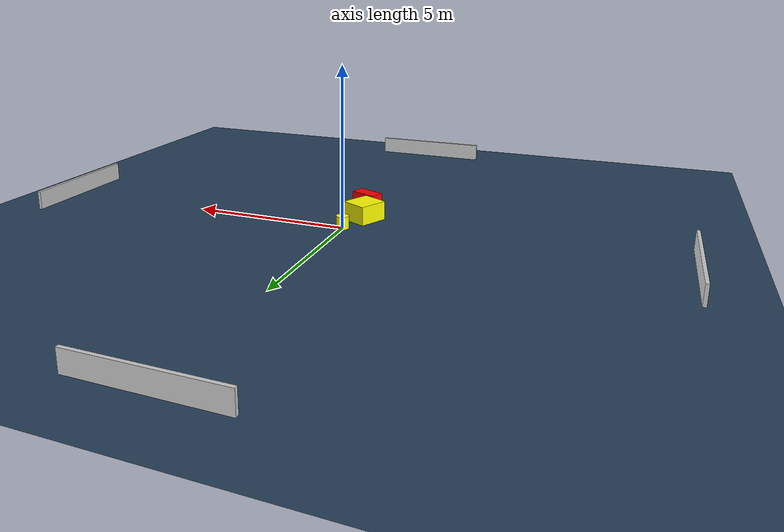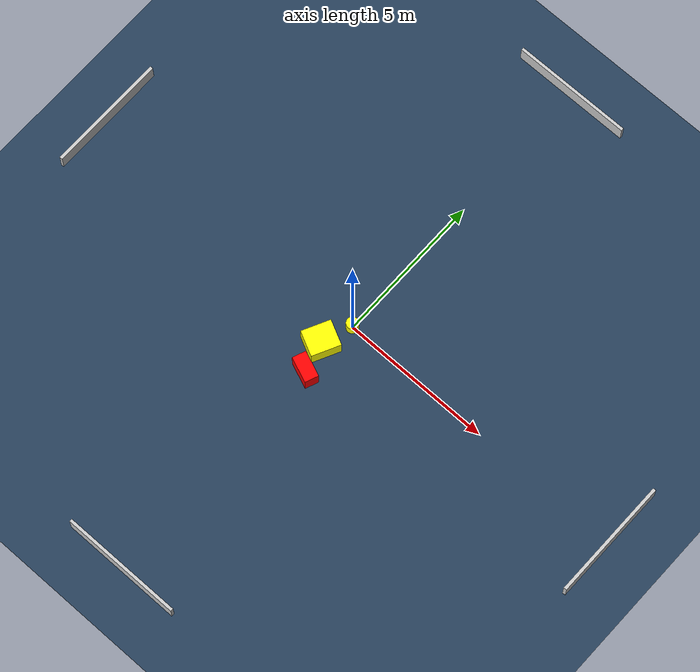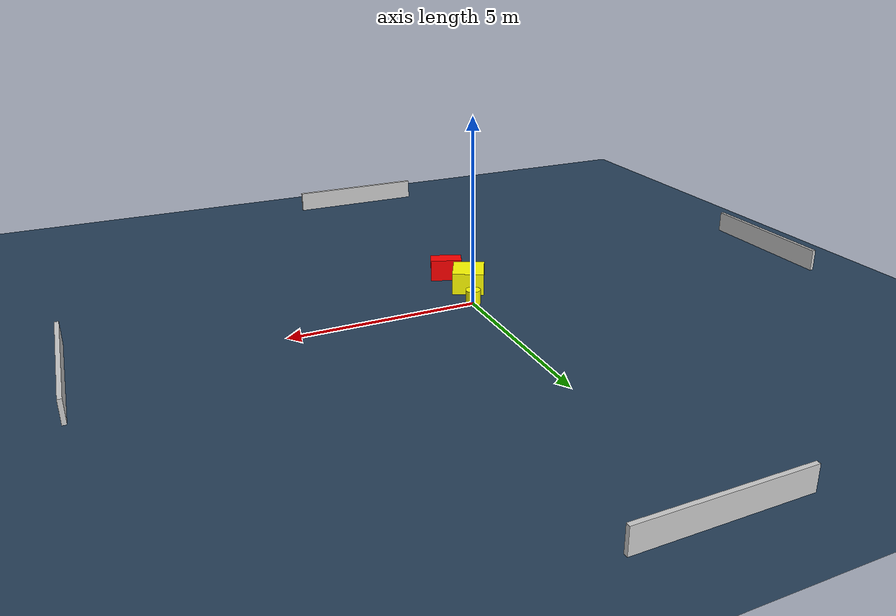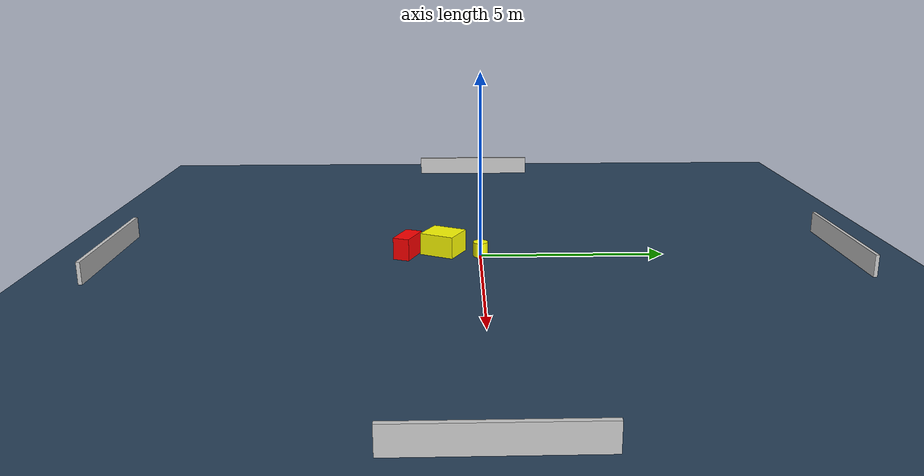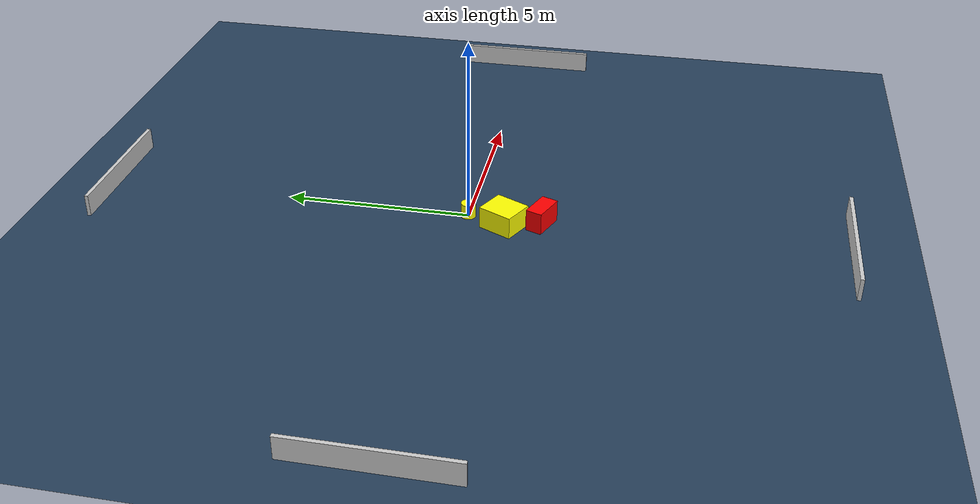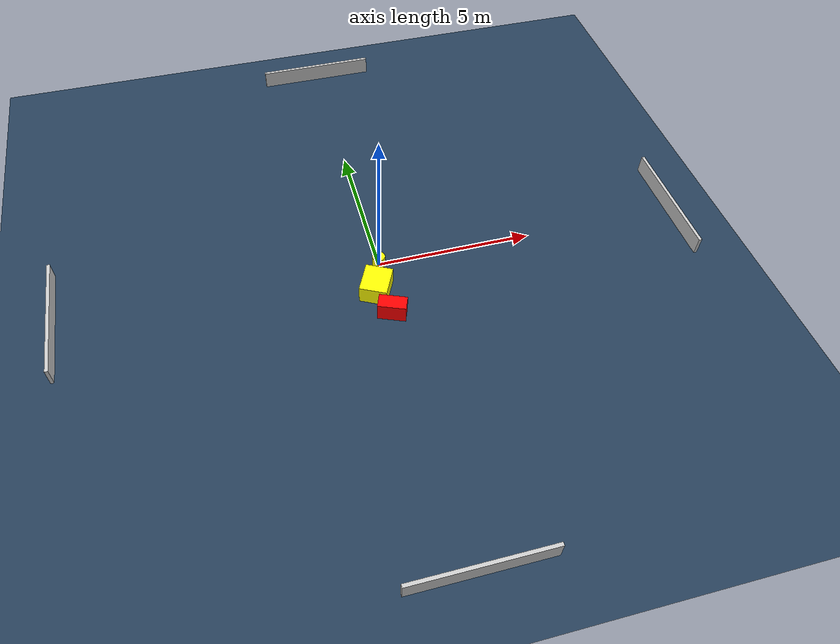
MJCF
<?xml version="1.0" ?>
<mujoco model="generated_environment">
  <option timestep="0.01" integrator="RK4" cone="elliptic"/>
  <default>
    <geom density="1"/>
  </default>
  <asset>
    <texture builtin="gradient" height="3072" name="skybox" rgb1="0.3 0.5 0.7" rgb2="0 0 0" type="skybox" width="512"/>
    <texture builtin="checker" height="300" name="groundplane" rgb1="0.2 0.3 0.4" rgb2="0.1 0.2 0.3" type="2d" width="300"/>
    <material name="groundplane" reflectance="0.2" texrepeat="5 5" texture="groundplane"/>
  </asset>
  <worldbody>
    <light dir="0 0 -1" directional="true" pos="0 0 1.5"/>
    <geom condim="3" friction="0.5 0.005 0.001" material="groundplane" name="floor" pos="0 0 0" size="0 0 0.05" type="plane"/>
    <body name="walls">
      <geom name="wall_1" condim="4" pos="-10.0 0.0 0.3" rgba="0.800000011920929 0.800000011920929 0.800000011920929 1.0" size="0.05 2.0 0.3" type="box"/>
      <geom name="wall_2" condim="4" pos="10.0 0.0 0.3" rgba="0.800000011920929 0.800000011920929 0.800000011920929 1.0" size="0.05 2.0 0.3" type="box"/>
      <geom name="wall_3" condim="4" pos="0.0 -10.0 0.3" rgba="0.800000011920929 0.800000011920929 0.800000011920929 1.0" size="2.0 0.05 0.3" type="box"/>
      <geom name="wall_4" condim="4" pos="0.0 10.0 0.3" rgba="0.800000011920929 0.800000011920929 0.800000011920929 1.0" size="2.0 0.05 0.3" type="box"/>
    </body>
    <body name="robot">
      <joint name="joint_x" type="slide" pos="0 0 0" axis="1 0 0"/>
      <joint name="joint_y" type="slide" pos="0 0 0" axis="0 1 0"/>
      <geom name="robot" type="cylinder" pos="0.0 0.0 0.2" size="0.2 0.2 0.0" mass="5.0" friction="1.0 0.005 0.0001" condim="4" rgba="1.0 1.0 0.0 1.0"/>
    </body>
    <body name="obstacle_1_movable">
      <geom name="obstacle_1_movable" condim="4" pos="-0.33647439435647725 -1.018279604862143 0.3" euler="0 0 63.56997988292539" friction="0.0 0.005 0.001" rgba="1.0 1.0 0.0 1.0" size="0.48587360079202274 0.42729459731204233 0.3" type="box" mass="0.1"/>
      <joint type="free"/>
    </body>
    <body name="obstacle_2_static">
      <geom name="obstacle_2_static" condim="4" pos="-0.08112396294234792 -1.9899864124997386 0.3" euler="0 0 338.33032695298283" friction="0.0 0.005 0.001" rgba="1.0 0.0 0.0 1.0" size="0.4320267330128104 0.2282035052913812 0.3" type="box"/>
    </body>
  </worldbody>
  <actuator>
    <motor name="actuator_x" joint="joint_x" gear="1" ctrlrange="-1 1"/>
    <motor name="actuator_y" joint="joint_y" gear="1" ctrlrange="-1 1"/>
  </actuator>
</mujoco>
